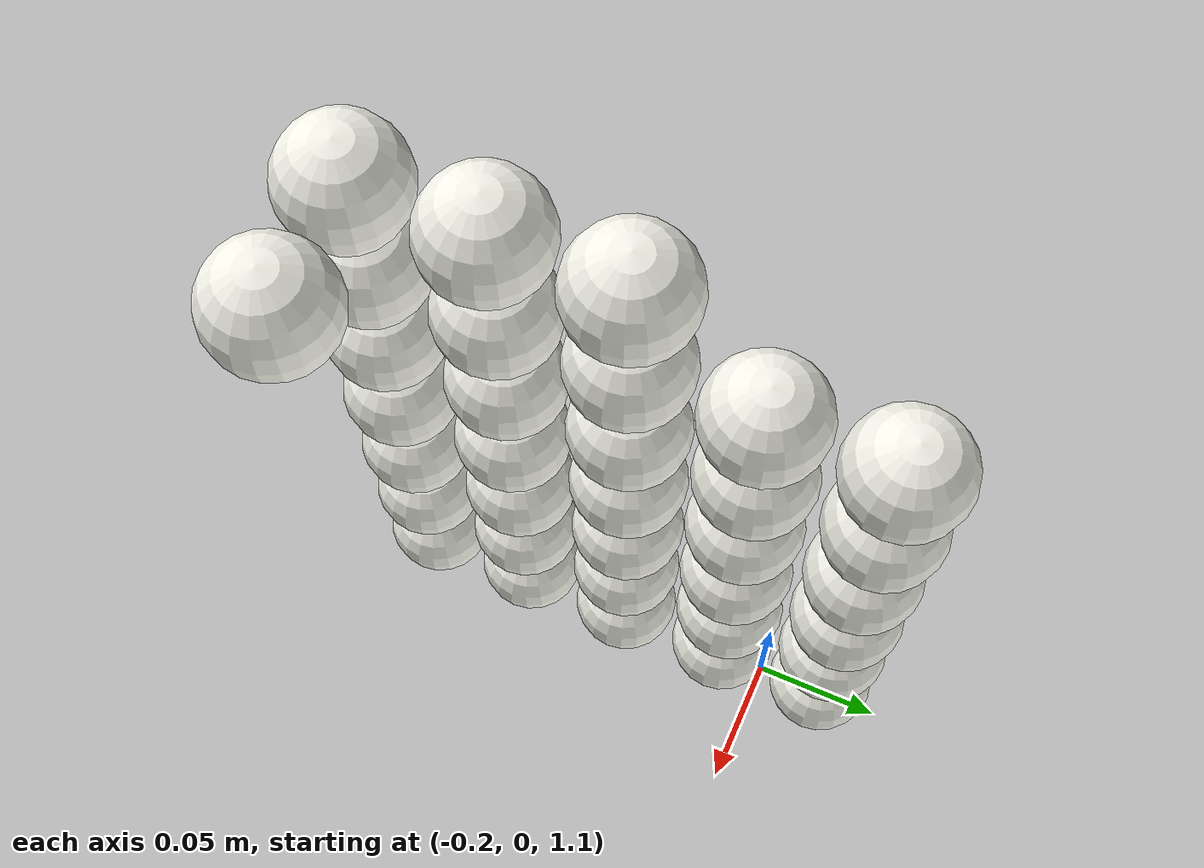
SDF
<sdf version="1.8">
 <world name="physical_100_dt5ms_diagnostic">
  <model name="ground">
   <static>true</static>
   <link name="ground_link">
    <collision name="floor">
     <geometry><plane><normal>0 0 1</normal><size>20 20</size></plane></geometry>
    </collision>
    <visual name="floor_visual">
     <geometry><plane><normal>0 0 1</normal><size>20 20</size></plane></geometry>
     <material><ambient>0.65 0.67 0.7 1</ambient><diffuse>0.65 0.67 0.7 1</diffuse></material>
    </visual>
   </link>
  </model>
  <model name="inventory_ball_002">
   <static>false</static>
   <pose>-0.19216607355711071 -0.1418581172715016 1.143306019692454 0 0 0</pose>
   <link name="ball_link">
    <inertial>
     <mass>0.0027000000000000001</mass>
     <inertia>
      <ixx>7.1999999999999999e-07</ixx>
      <iyy>7.1999999999999999e-07</iyy>
      <izz>7.1999999999999999e-07</izz>
      <ixy>0</ixy>
      <ixz>0</ixz>
      <iyz>0</iyz>
     </inertia>
    </inertial>
    <collision name="ball_collision">
     <geometry><sphere><radius>0.02</radius></sphere></geometry>
     <surface>
      <friction><ode><mu>0.3</mu><mu2>0.3</mu2></ode></friction>
      <bounce><restitution_coefficient>0.8</restitution_coefficient><threshold>0.01</threshold></bounce>
     </surface>
    </collision>
    <visual name="ball_visual">
     <geometry><sphere><radius>0.02</radius></sphere></geometry>
     <material><ambient>0.96 0.96 0.92 1</ambient><diffuse>0.96 0.96 0.92 1</diffuse></material>
    </visual>
   </link>
  </model>
  <model name="inventory_ball_005">
   <static>false</static>
   <pose>-0.19228407841818967 -0.10058069740958803 1.1432899306626678 0 0 0</pose>
   <link name="ball_link">
    <inertial>
     <mass>0.0027000000000000001</mass>
     <inertia>
      <ixx>7.1999999999999999e-07</ixx>
      <iyy>7.1999999999999999e-07</iyy>
      <izz>7.1999999999999999e-07</izz>
      <ixy>0</ixy>
      <ixz>0</ixz>
      <iyz>0</iyz>
     </inertia>
    </inertial>
    <collision name="ball_collision">
     <geometry><sphere><radius>0.02</radius></sphere></geometry>
     <surface>
      <friction><ode><mu>0.3</mu><mu2>0.3</mu2></ode></friction>
      <bounce><restitution_coefficient>0.8</restitution_coefficient><threshold>0.01</threshold></bounce>
     </surface>
    </collision>
    <visual name="ball_visual">
     <geometry><sphere><radius>0.02</radius></sphere></geometry>
     <material><ambient>0.96 0.96 0.92 1</ambient><diffuse>0.96 0.96 0.92 1</diffuse></material>
    </visual>
   </link>
  </model>
  <model name="inventory_ball_008">
   <static>false</static>
   <pose>-0.19188111636300706 -0.058895849690089208 1.1429932876998874 0 0 0</pose>
   <link name="ball_link">
    <inertial>
     <mass>0.0027000000000000001</mass>
     <inertia>
      <ixx>7.1999999999999999e-07</ixx>
      <iyy>7.1999999999999999e-07</iyy>
      <izz>7.1999999999999999e-07</izz>
      <ixy>0</ixy>
      <ixz>0</ixz>
      <iyz>0</iyz>
     </inertia>
    </inertial>
    <collision name="ball_collision">
     <geometry><sphere><radius>0.02</radius></sphere></geometry>
     <surface>
      <friction><ode><mu>0.3</mu><mu2>0.3</mu2></ode></friction>
      <bounce><restitution_coefficient>0.8</restitution_coefficient><threshold>0.01</threshold></bounce>
     </surface>
    </collision>
    <visual name="ball_visual">
     <geometry><sphere><radius>0.02</radius></sphere></geometry>
     <material><ambient>0.96 0.96 0.92 1</ambient><diffuse>0.96 0.96 0.92 1</diffuse></material>
    </visual>
   </link>
  </model>
  <model name="inventory_ball_011">
   <static>false</static>
   <pose>-0.19181572303603536 -0.017062160927983704 1.1432217368548729 0 0 0</pose>
   <link name="ball_link">
    <inertial>
     <mass>0.0027000000000000001</mass>
     <inertia>
      <ixx>7.1999999999999999e-07</ixx>
      <iyy>7.1999999999999999e-07</iyy>
      <izz>7.1999999999999999e-07</izz>
      <ixy>0</ixy>
      <ixz>0</ixz>
      <iyz>0</iyz>
     </inertia>
    </inertial>
    <collision name="ball_collision">
     <geometry><sphere><radius>0.02</radius></sphere></geometry>
     <surface>
      <friction><ode><mu>0.3</mu><mu2>0.3</mu2></ode></friction>
      <bounce><restitution_coefficient>0.8</restitution_coefficient><threshold>0.01</threshold></bounce>
     </surface>
    </collision>
    <visual name="ball_visual">
     <geometry><sphere><radius>0.02</radius></sphere></geometry>
     <material><ambient>0.96 0.96 0.92 1</ambient><diffuse>0.96 0.96 0.92 1</diffuse></material>
    </visual>
   </link>
  </model>
  <model name="inventory_ball_014">
   <static>false</static>
   <pose>-0.19195358871284596 0.024522743101728958 1.1429274946301937 0 0 0</pose>
   <link name="ball_link">
    <inertial>
     <mass>0.0027000000000000001</mass>
     <inertia>
      <ixx>7.1999999999999999e-07</ixx>
      <iyy>7.1999999999999999e-07</iyy>
      <izz>7.1999999999999999e-07</izz>
      <ixy>0</ixy>
      <ixz>0</ixz>
      <iyz>0</iyz>
     </inertia>
    </inertial>
    <collision name="ball_collision">
     <geometry><sphere><radius>0.02</radius></sphere></geometry>
     <surface>
      <friction><ode><mu>0.3</mu><mu2>0.3</mu2></ode></friction>
      <bounce><restitution_coefficient>0.8</restitution_coefficient><threshold>0.01</threshold></bounce>
     </surface>
    </collision>
    <visual name="ball_visual">
     <geometry><sphere><radius>0.02</radius></sphere></geometry>
     <material><ambient>0.96 0.96 0.92 1</ambient><diffuse>0.96 0.96 0.92 1</diffuse></material>
    </visual>
   </link>
  </model>
  <model name="inventory_ball_017">
   <static>false</static>
   <pose>-0.19191858933344136 -0.14208110069261795 1.1847221085802704 0 0 0</pose>
   <link name="ball_link">
    <inertial>
     <mass>0.0027000000000000001</mass>
     <inertia>
      <ixx>7.1999999999999999e-07</ixx>
      <iyy>7.1999999999999999e-07</iyy>
      <izz>7.1999999999999999e-07</izz>
      <ixy>0</ixy>
      <ixz>0</ixz>
      <iyz>0</iyz>
     </inertia>
    </inertial>
    <collision name="ball_collision">
     <geometry><sphere><radius>0.02</radius></sphere></geometry>
     <surface>
      <friction><ode><mu>0.3</mu><mu2>0.3</mu2></ode></friction>
      <bounce><restitution_coefficient>0.8</restitution_coefficient><threshold>0.01</threshold></bounce>
     </surface>
    </collision>
    <visual name="ball_visual">
     <geometry><sphere><radius>0.02</radius></sphere></geometry>
     <material><ambient>0.96 0.96 0.92 1</ambient><diffuse>0.96 0.96 0.92 1</diffuse></material>
    </visual>
   </link>
  </model>
  <model name="inventory_ball_020">
   <static>false</static>
   <pose>-0.19186252392122979 -0.10060195850374286 1.1847276732650549 0 0 0</pose>
   <link name="ball_link">
    <inertial>
     <mass>0.0027000000000000001</mass>
     <inertia>
      <ixx>7.1999999999999999e-07</ixx>
      <iyy>7.1999999999999999e-07</iyy>
      <izz>7.1999999999999999e-07</izz>
      <ixy>0</ixy>
      <ixz>0</ixz>
      <iyz>0</iyz>
     </inertia>
    </inertial>
    <collision name="ball_collision">
     <geometry><sphere><radius>0.02</radius></sphere></geometry>
     <surface>
      <friction><ode><mu>0.3</mu><mu2>0.3</mu2></ode></friction>
      <bounce><restitution_coefficient>0.8</restitution_coefficient><threshold>0.01</threshold></bounce>
     </surface>
    </collision>
    <visual name="ball_visual">
     <geometry><sphere><radius>0.02</radius></sphere></geometry>
     <material><ambient>0.96 0.96 0.92 1</ambient><diffuse>0.96 0.96 0.92 1</diffuse></material>
    </visual>
   </link>
  </model>
  <model name="inventory_ball_023">
   <static>false</static>
   <pose>-0.19216257115682153 -0.059080739853657582 1.1846892718288358 0 0 0</pose>
   <link name="ball_link">
    <inertial>
     <mass>0.0027000000000000001</mass>
     <inertia>
      <ixx>7.1999999999999999e-07</ixx>
      <iyy>7.1999999999999999e-07</iyy>
      <izz>7.1999999999999999e-07</izz>
      <ixy>0</ixy>
      <ixz>0</ixz>
      <iyz>0</iyz>
     </inertia>
    </inertial>
    <collision name="ball_collision">
     <geometry><sphere><radius>0.02</radius></sphere></geometry>
     <surface>
      <friction><ode><mu>0.3</mu><mu2>0.3</mu2></ode></friction>
      <bounce><restitution_coefficient>0.8</restitution_coefficient><threshold>0.01</threshold></bounce>
     </surface>
    </collision>
    <visual name="ball_visual">
     <geometry><sphere><radius>0.02</radius></sphere></geometry>
     <material><ambient>0.96 0.96 0.92 1</ambient><diffuse>0.96 0.96 0.92 1</diffuse></material>
    </visual>
   </link>
  </model>
  <model name="inventory_ball_026">
   <static>false</static>
   <pose>-0.1920626208593636 -0.016951271446155668 1.1847753111115527 0 0 0</pose>
   <link name="ball_link">
    <inertial>
     <mass>0.0027000000000000001</mass>
     <inertia>
      <ixx>7.1999999999999999e-07</ixx>
      <iyy>7.1999999999999999e-07</iyy>
      <izz>7.1999999999999999e-07</izz>
      <ixy>0</ixy>
      <ixz>0</ixz>
      <iyz>0</iyz>
     </inertia>
    </inertial>
    <collision name="ball_collision">
     <geometry><sphere><radius>0.02</radius></sphere></geometry>
     <surface>
      <friction><ode><mu>0.3</mu><mu2>0.3</mu2></ode></friction>
      <bounce><restitution_coefficient>0.8</restitution_coefficient><threshold>0.01</threshold></bounce>
     </surface>
    </collision>
    <visual name="ball_visual">
     <geometry><sphere><radius>0.02</radius></sphere></geometry>
     <material><ambient>0.96 0.96 0.92 1</ambient><diffuse>0.96 0.96 0.92 1</diffuse></material>
    </visual>
   </link>
  </model>
  <model name="inventory_ball_029">
   <static>false</static>
   <pose>-0.19206035969691576 0.024231592455494375 1.1850985225638975 0 0 0</pose>
   <link name="ball_link">
    <inertial>
     <mass>0.0027000000000000001</mass>
     <inertia>
      <ixx>7.1999999999999999e-07</ixx>
      <iyy>7.1999999999999999e-07</iyy>
      <izz>7.1999999999999999e-07</izz>
      <ixy>0</ixy>
      <ixz>0</ixz>
      <iyz>0</iyz>
     </inertia>
    </inertial>
    <collision name="ball_collision">
     <geometry><sphere><radius>0.02</radius></sphere></geometry>
     <surface>
      <friction><ode><mu>0.3</mu><mu2>0.3</mu2></ode></friction>
      <bounce><restitution_coefficient>0.8</restitution_coefficient><threshold>0.01</threshold></bounce>
     </surface>
    </collision>
    <visual name="ball_visual">
     <geometry><sphere><radius>0.02</radius></sphere></geometry>
     <material><ambient>0.96 0.96 0.92 1</ambient><diffuse>0.96 0.96 0.92 1</diffuse></material>
    </visual>
   </link>
  </model>
  <model name="inventory_ball_032">
   <static>false</static>
   <pose>-0.19204670401992019 -0.14226188337630885 1.2263289715719041 0 0 0</pose>
   <link name="ball_link">
    <inertial>
     <mass>0.0027000000000000001</mass>
     <inertia>
      <ixx>7.1999999999999999e-07</ixx>
      <iyy>7.1999999999999999e-07</iyy>
      <izz>7.1999999999999999e-07</izz>
      <ixy>0</ixy>
      <ixz>0</ixz>
      <iyz>0</iyz>
     </inertia>
    </inertial>
    <collision name="ball_collision">
     <geometry><sphere><radius>0.02</radius></sphere></geometry>
     <surface>
      <friction><ode><mu>0.3</mu><mu2>0.3</mu2></ode></friction>
      <bounce><restitution_coefficient>0.8</restitution_coefficient><threshold>0.01</threshold></bounce>
     </surface>
    </collision>
    <visual name="ball_visual">
     <geometry><sphere><radius>0.02</radius></sphere></geometry>
     <material><ambient>0.96 0.96 0.92 1</ambient><diffuse>0.96 0.96 0.92 1</diffuse></material>
    </visual>
   </link>
  </model>
  <model name="inventory_ball_035">
   <static>false</static>
   <pose>-0.19189097377858405 -0.10037781780175474 1.2262600951139717 0 0 0</pose>
   <link name="ball_link">
    <inertial>
     <mass>0.0027000000000000001</mass>
     <inertia>
      <ixx>7.1999999999999999e-07</ixx>
      <iyy>7.1999999999999999e-07</iyy>
      <izz>7.1999999999999999e-07</izz>
      <ixy>0</ixy>
      <ixz>0</ixz>
      <iyz>0</iyz>
     </inertia>
    </inertial>
    <collision name="ball_collision">
     <geometry><sphere><radius>0.02</radius></sphere></geometry>
     <surface>
      <friction><ode><mu>0.3</mu><mu2>0.3</mu2></ode></friction>
      <bounce><restitution_coefficient>0.8</restitution_coefficient><threshold>0.01</threshold></bounce>
     </surface>
    </collision>
    <visual name="ball_visual">
     <geometry><sphere><radius>0.02</radius></sphere></geometry>
     <material><ambient>0.96 0.96 0.92 1</ambient><diffuse>0.96 0.96 0.92 1</diffuse></material>
    </visual>
   </link>
  </model>
  <model name="inventory_ball_038">
   <static>false</static>
   <pose>-0.19214196656954935 -0.058799648332169829 1.2262071911283183 0 0 0</pose>
   <link name="ball_link">
    <inertial>
     <mass>0.0027000000000000001</mass>
     <inertia>
      <ixx>7.1999999999999999e-07</ixx>
      <iyy>7.1999999999999999e-07</iyy>
      <izz>7.1999999999999999e-07</izz>
      <ixy>0</ixy>
      <ixz>0</ixz>
      <iyz>0</iyz>
     </inertia>
    </inertial>
    <collision name="ball_collision">
     <geometry><sphere><radius>0.02</radius></sphere></geometry>
     <surface>
      <friction><ode><mu>0.3</mu><mu2>0.3</mu2></ode></friction>
      <bounce><restitution_coefficient>0.8</restitution_coefficient><threshold>0.01</threshold></bounce>
     </surface>
    </collision>
    <visual name="ball_visual">
     <geometry><sphere><radius>0.02</radius></sphere></geometry>
     <material><ambient>0.96 0.96 0.92 1</ambient><diffuse>0.96 0.96 0.92 1</diffuse></material>
    </visual>
   </link>
  </model>
  <model name="inventory_ball_041">
   <static>false</static>
   <pose>-0.19184249351995492 -0.017176372581928216 1.2265671758871786 0 0 0</pose>
   <link name="ball_link">
    <inertial>
     <mass>0.0027000000000000001</mass>
     <inertia>
      <ixx>7.1999999999999999e-07</ixx>
      <iyy>7.1999999999999999e-07</iyy>
      <izz>7.1999999999999999e-07</izz>
      <ixy>0</ixy>
      <ixz>0</ixz>
      <iyz>0</iyz>
     </inertia>
    </inertial>
    <collision name="ball_collision">
     <geometry><sphere><radius>0.02</radius></sphere></geometry>
     <surface>
      <friction><ode><mu>0.3</mu><mu2>0.3</mu2></ode></friction>
      <bounce><restitution_coefficient>0.8</restitution_coefficient><threshold>0.01</threshold></bounce>
     </surface>
    </collision>
    <visual name="ball_visual">
     <geometry><sphere><radius>0.02</radius></sphere></geometry>
     <material><ambient>0.96 0.96 0.92 1</ambient><diffuse>0.96 0.96 0.92 1</diffuse></material>
    </visual>
   </link>
  </model>
  <model name="inventory_ball_044">
   <static>false</static>
   <pose>-0.19180100068238329 0.024284508475241603 1.2261347550998967 0 0 0</pose>
   <link name="ball_link">
    <inertial>
     <mass>0.0027000000000000001</mass>
     <inertia>
      <ixx>7.1999999999999999e-07</ixx>
      <iyy>7.1999999999999999e-07</iyy>
      <izz>7.1999999999999999e-07</izz>
      <ixy>0</ixy>
      <ixz>0</ixz>
      <iyz>0</iyz>
     </inertia>
    </inertial>
    <collision name="ball_collision">
     <geometry><sphere><radius>0.02</radius></sphere></geometry>
     <surface>
      <friction><ode><mu>0.3</mu><mu2>0.3</mu2></ode></friction>
      <bounce><restitution_coefficient>0.8</restitution_coefficient><threshold>0.01</threshold></bounce>
     </surface>
    </collision>
    <visual name="ball_visual">
     <geometry><sphere><radius>0.02</radius></sphere></geometry>
     <material><ambient>0.96 0.96 0.92 1</ambient><diffuse>0.96 0.96 0.92 1</diffuse></material>
    </visual>
   </link>
  </model>
  <model name="inventory_ball_047">
   <static>false</static>
   <pose>-0.19184049934241582 -0.14222296512130017 1.2679851694268596 0 0 0</pose>
   <link name="ball_link">
    <inertial>
     <mass>0.0027000000000000001</mass>
     <inertia>
      <ixx>7.1999999999999999e-07</ixx>
      <iyy>7.1999999999999999e-07</iyy>
      <izz>7.1999999999999999e-07</izz>
      <ixy>0</ixy>
      <ixz>0</ixz>
      <iyz>0</iyz>
     </inertia>
    </inertial>
    <collision name="ball_collision">
     <geometry><sphere><radius>0.02</radius></sphere></geometry>
     <surface>
      <friction><ode><mu>0.3</mu><mu2>0.3</mu2></ode></friction>
      <bounce><restitution_coefficient>0.8</restitution_coefficient><threshold>0.01</threshold></bounce>
     </surface>
    </collision>
    <visual name="ball_visual">
     <geometry><sphere><radius>0.02</radius></sphere></geometry>
     <material><ambient>0.96 0.96 0.92 1</ambient><diffuse>0.96 0.96 0.92 1</diffuse></material>
    </visual>
   </link>
  </model>
  <model name="inventory_ball_050">
   <static>false</static>
   <pose>-0.19186204135854601 -0.1005793093619662 1.2678870297747808 0 0 0</pose>
   <link name="ball_link">
    <inertial>
     <mass>0.0027000000000000001</mass>
     <inertia>
      <ixx>7.1999999999999999e-07</ixx>
      <iyy>7.1999999999999999e-07</iyy>
      <izz>7.1999999999999999e-07</izz>
      <ixy>0</ixy>
      <ixz>0</ixz>
      <iyz>0</iyz>
     </inertia>
    </inertial>
    <collision name="ball_collision">
     <geometry><sphere><radius>0.02</radius></sphere></geometry>
     <surface>
      <friction><ode><mu>0.3</mu><mu2>0.3</mu2></ode></friction>
      <bounce><restitution_coefficient>0.8</restitution_coefficient><threshold>0.01</threshold></bounce>
     </surface>
    </collision>
    <visual name="ball_visual">
     <geometry><sphere><radius>0.02</radius></sphere></geometry>
     <material><ambient>0.96 0.96 0.92 1</ambient><diffuse>0.96 0.96 0.92 1</diffuse></material>
    </visual>
   </link>
  </model>
  <model name="inventory_ball_053">
   <static>false</static>
   <pose>-0.19209714866271152 -0.058747014768925666 1.2678380688395581 0 0 0</pose>
   <link name="ball_link">
    <inertial>
     <mass>0.0027000000000000001</mass>
     <inertia>
      <ixx>7.1999999999999999e-07</ixx>
      <iyy>7.1999999999999999e-07</iyy>
      <izz>7.1999999999999999e-07</izz>
      <ixy>0</ixy>
      <ixz>0</ixz>
      <iyz>0</iyz>
     </inertia>
    </inertial>
    <collision name="ball_collision">
     <geometry><sphere><radius>0.02</radius></sphere></geometry>
     <surface>
      <friction><ode><mu>0.3</mu><mu2>0.3</mu2></ode></friction>
      <bounce><restitution_coefficient>0.8</restitution_coefficient><threshold>0.01</threshold></bounce>
     </surface>
    </collision>
    <visual name="ball_visual">
     <geometry><sphere><radius>0.02</radius></sphere></geometry>
     <material><ambient>0.96 0.96 0.92 1</ambient><diffuse>0.96 0.96 0.92 1</diffuse></material>
    </visual>
   </link>
  </model>
  <model name="inventory_ball_056">
   <static>false</static>
   <pose>-0.19225748559006681 -0.017357197219378596 1.2681013866669779 0 0 0</pose>
   <link name="ball_link">
    <inertial>
     <mass>0.0027000000000000001</mass>
     <inertia>
      <ixx>7.1999999999999999e-07</ixx>
      <iyy>7.1999999999999999e-07</iyy>
      <izz>7.1999999999999999e-07</izz>
      <ixy>0</ixy>
      <ixz>0</ixz>
      <iyz>0</iyz>
     </inertia>
    </inertial>
    <collision name="ball_collision">
     <geometry><sphere><radius>0.02</radius></sphere></geometry>
     <surface>
      <friction><ode><mu>0.3</mu><mu2>0.3</mu2></ode></friction>
      <bounce><restitution_coefficient>0.8</restitution_coefficient><threshold>0.01</threshold></bounce>
     </surface>
    </collision>
    <visual name="ball_visual">
     <geometry><sphere><radius>0.02</radius></sphere></geometry>
     <material><ambient>0.96 0.96 0.92 1</ambient><diffuse>0.96 0.96 0.92 1</diffuse></material>
    </visual>
   </link>
  </model>
  <model name="inventory_ball_059">
   <static>false</static>
   <pose>-0.19181550180134002 0.024214245948617132 1.2677581584885376 0 0 0</pose>
   <link name="ball_link">
    <inertial>
     <mass>0.0027000000000000001</mass>
     <inertia>
      <ixx>7.1999999999999999e-07</ixx>
      <iyy>7.1999999999999999e-07</iyy>
      <izz>7.1999999999999999e-07</izz>
      <ixy>0</ixy>
      <ixz>0</ixz>
      <iyz>0</iyz>
     </inertia>
    </inertial>
    <collision name="ball_collision">
     <geometry><sphere><radius>0.02</radius></sphere></geometry>
     <surface>
      <friction><ode><mu>0.3</mu><mu2>0.3</mu2></ode></friction>
      <bounce><restitution_coefficient>0.8</restitution_coefficient><threshold>0.01</threshold></bounce>
     </surface>
    </collision>
    <visual name="ball_visual">
     <geometry><sphere><radius>0.02</radius></sphere></geometry>
     <material><ambient>0.96 0.96 0.92 1</ambient><diffuse>0.96 0.96 0.92 1</diffuse></material>
    </visual>
   </link>
  </model>
  <model name="inventory_ball_062">
   <static>false</static>
   <pose>-0.19224094927730884 -0.14205842723073867 1.3095035815632372 0 0 0</pose>
   <link name="ball_link">
    <inertial>
     <mass>0.0027000000000000001</mass>
     <inertia>
      <ixx>7.1999999999999999e-07</ixx>
      <iyy>7.1999999999999999e-07</iyy>
      <izz>7.1999999999999999e-07</izz>
      <ixy>0</ixy>
      <ixz>0</ixz>
      <iyz>0</iyz>
     </inertia>
    </inertial>
    <collision name="ball_collision">
     <geometry><sphere><radius>0.02</radius></sphere></geometry>
     <surface>
      <friction><ode><mu>0.3</mu><mu2>0.3</mu2></ode></friction>
      <bounce><restitution_coefficient>0.8</restitution_coefficient><threshold>0.01</threshold></bounce>
     </surface>
    </collision>
    <visual name="ball_visual">
     <geometry><sphere><radius>0.02</radius></sphere></geometry>
     <material><ambient>0.96 0.96 0.92 1</ambient><diffuse>0.96 0.96 0.92 1</diffuse></material>
    </visual>
   </link>
  </model>
  <model name="inventory_ball_065">
   <static>false</static>
   <pose>-0.19215011613127075 -0.10014604064043441 1.3095658784470323 0 0 0</pose>
   <link name="ball_link">
    <inertial>
     <mass>0.0027000000000000001</mass>
     <inertia>
      <ixx>7.1999999999999999e-07</ixx>
      <iyy>7.1999999999999999e-07</iyy>
      <izz>7.1999999999999999e-07</izz>
      <ixy>0</ixy>
      <ixz>0</ixz>
      <iyz>0</iyz>
     </inertia>
    </inertial>
    <collision name="ball_collision">
     <geometry><sphere><radius>0.02</radius></sphere></geometry>
     <surface>
      <friction><ode><mu>0.3</mu><mu2>0.3</mu2></ode></friction>
      <bounce><restitution_coefficient>0.8</restitution_coefficient><threshold>0.01</threshold></bounce>
     </surface>
    </collision>
    <visual name="ball_visual">
     <geometry><sphere><radius>0.02</radius></sphere></geometry>
     <material><ambient>0.96 0.96 0.92 1</ambient><diffuse>0.96 0.96 0.92 1</diffuse></material>
    </visual>
   </link>
  </model>
  <model name="inventory_ball_068">
   <static>false</static>
   <pose>-0.19174417981019512 -0.05859078255935142 1.3093997866663627 0 0 0</pose>
   <link name="ball_link">
    <inertial>
     <mass>0.0027000000000000001</mass>
     <inertia>
      <ixx>7.1999999999999999e-07</ixx>
      <iyy>7.1999999999999999e-07</iyy>
      <izz>7.1999999999999999e-07</izz>
      <ixy>0</ixy>
      <ixz>0</ixz>
      <iyz>0</iyz>
     </inertia>
    </inertial>
    <collision name="ball_collision">
     <geometry><sphere><radius>0.02</radius></sphere></geometry>
     <surface>
      <friction><ode><mu>0.3</mu><mu2>0.3</mu2></ode></friction>
      <bounce><restitution_coefficient>0.8</restitution_coefficient><threshold>0.01</threshold></bounce>
     </surface>
    </collision>
    <visual name="ball_visual">
     <geometry><sphere><radius>0.02</radius></sphere></geometry>
     <material><ambient>0.96 0.96 0.92 1</ambient><diffuse>0.96 0.96 0.92 1</diffuse></material>
    </visual>
   </link>
  </model>
  <model name="inventory_ball_071">
   <static>false</static>
   <pose>-0.1921408781650967 -0.01702955763883085 1.3095730050204037 0 0 0</pose>
   <link name="ball_link">
    <inertial>
     <mass>0.0027000000000000001</mass>
     <inertia>
      <ixx>7.1999999999999999e-07</ixx>
      <iyy>7.1999999999999999e-07</iyy>
      <izz>7.1999999999999999e-07</izz>
      <ixy>0</ixy>
      <ixz>0</ixz>
      <iyz>0</iyz>
     </inertia>
    </inertial>
    <collision name="ball_collision">
     <geometry><sphere><radius>0.02</radius></sphere></geometry>
     <surface>
      <friction><ode><mu>0.3</mu><mu2>0.3</mu2></ode></friction>
      <bounce><restitution_coefficient>0.8</restitution_coefficient><threshold>0.01</threshold></bounce>
     </surface>
    </collision>
    <visual name="ball_visual">
     <geometry><sphere><radius>0.02</radius></sphere></geometry>
     <material><ambient>0.96 0.96 0.92 1</ambient><diffuse>0.96 0.96 0.92 1</diffuse></material>
    </visual>
   </link>
  </model>
  <model name="inventory_ball_074">
   <static>false</static>
   <pose>-0.19212197530470326 0.024681225618981499 1.30964750817449 0 0 0</pose>
   <link name="ball_link">
    <inertial>
     <mass>0.0027000000000000001</mass>
     <inertia>
      <ixx>7.1999999999999999e-07</ixx>
      <iyy>7.1999999999999999e-07</iyy>
      <izz>7.1999999999999999e-07</izz>
      <ixy>0</ixy>
      <ixz>0</ixz>
      <iyz>0</iyz>
     </inertia>
    </inertial>
    <collision name="ball_collision">
     <geometry><sphere><radius>0.02</radius></sphere></geometry>
     <surface>
      <friction><ode><mu>0.3</mu><mu2>0.3</mu2></ode></friction>
      <bounce><restitution_coefficient>0.8</restitution_coefficient><threshold>0.01</threshold></bounce>
     </surface>
    </collision>
    <visual name="ball_visual">
     <geometry><sphere><radius>0.02</radius></sphere></geometry>
     <material><ambient>0.96 0.96 0.92 1</ambient><diffuse>0.96 0.96 0.92 1</diffuse></material>
    </visual>
   </link>
  </model>
  <model name="inventory_ball_077">
   <static>false</static>
   <pose>-0.19220554036323631 -0.14172353265803533 1.3509480668791445 0 0 0</pose>
   <link name="ball_link">
    <inertial>
     <mass>0.0027000000000000001</mass>
     <inertia>
      <ixx>7.1999999999999999e-07</ixx>
      <iyy>7.1999999999999999e-07</iyy>
      <izz>7.1999999999999999e-07</izz>
      <ixy>0</ixy>
      <ixz>0</ixz>
      <iyz>0</iyz>
     </inertia>
    </inertial>
    <collision name="ball_collision">
     <geometry><sphere><radius>0.02</radius></sphere></geometry>
     <surface>
      <friction><ode><mu>0.3</mu><mu2>0.3</mu2></ode></friction>
      <bounce><restitution_coefficient>0.8</restitution_coefficient><threshold>0.01</threshold></bounce>
     </surface>
    </collision>
    <visual name="ball_visual">
     <geometry><sphere><radius>0.02</radius></sphere></geometry>
     <material><ambient>0.96 0.96 0.92 1</ambient><diffuse>0.96 0.96 0.92 1</diffuse></material>
    </visual>
   </link>
  </model>
  <model name="inventory_ball_080">
   <static>false</static>
   <pose>-0.19215227079132682 -0.10034328850787995 1.3512716289061995 0 0 0</pose>
   <link name="ball_link">
    <inertial>
     <mass>0.0027000000000000001</mass>
     <inertia>
      <ixx>7.1999999999999999e-07</ixx>
      <iyy>7.1999999999999999e-07</iyy>
      <izz>7.1999999999999999e-07</izz>
      <ixy>0</ixy>
      <ixz>0</ixz>
      <iyz>0</iyz>
     </inertia>
    </inertial>
    <collision name="ball_collision">
     <geometry><sphere><radius>0.02</radius></sphere></geometry>
     <surface>
      <friction><ode><mu>0.3</mu><mu2>0.3</mu2></ode></friction>
      <bounce><restitution_coefficient>0.8</restitution_coefficient><threshold>0.01</threshold></bounce>
     </surface>
    </collision>
    <visual name="ball_visual">
     <geometry><sphere><radius>0.02</radius></sphere></geometry>
     <material><ambient>0.96 0.96 0.92 1</ambient><diffuse>0.96 0.96 0.92 1</diffuse></material>
    </visual>
   </link>
  </model>
  <model name="inventory_ball_083">
   <static>false</static>
   <pose>-0.19215678842843051 -0.058862528491925255 1.3513030141337761 0 0 0</pose>
   <link name="ball_link">
    <inertial>
     <mass>0.0027000000000000001</mass>
     <inertia>
      <ixx>7.1999999999999999e-07</ixx>
      <iyy>7.1999999999999999e-07</iyy>
      <izz>7.1999999999999999e-07</izz>
      <ixy>0</ixy>
      <ixz>0</ixz>
      <iyz>0</iyz>
     </inertia>
    </inertial>
    <collision name="ball_collision">
     <geometry><sphere><radius>0.02</radius></sphere></geometry>
     <surface>
      <friction><ode><mu>0.3</mu><mu2>0.3</mu2></ode></friction>
      <bounce><restitution_coefficient>0.8</restitution_coefficient><threshold>0.01</threshold></bounce>
     </surface>
    </collision>
    <visual name="ball_visual">
     <geometry><sphere><radius>0.02</radius></sphere></geometry>
     <material><ambient>0.96 0.96 0.92 1</ambient><diffuse>0.96 0.96 0.92 1</diffuse></material>
    </visual>
   </link>
  </model>
  <model name="inventory_ball_086">
   <static>false</static>
   <pose>-0.19170234213128695 -0.017456043567340214 1.3510278925873604 0 0 0</pose>
   <link name="ball_link">
    <inertial>
     <mass>0.0027000000000000001</mass>
     <inertia>
      <ixx>7.1999999999999999e-07</ixx>
      <iyy>7.1999999999999999e-07</iyy>
      <izz>7.1999999999999999e-07</izz>
      <ixy>0</ixy>
      <ixz>0</ixz>
      <iyz>0</iyz>
     </inertia>
    </inertial>
    <collision name="ball_collision">
     <geometry><sphere><radius>0.02</radius></sphere></geometry>
     <surface>
      <friction><ode><mu>0.3</mu><mu2>0.3</mu2></ode></friction>
      <bounce><restitution_coefficient>0.8</restitution_coefficient><threshold>0.01</threshold></bounce>
     </surface>
    </collision>
    <visual name="ball_visual">
     <geometry><sphere><radius>0.02</radius></sphere></geometry>
     <material><ambient>0.96 0.96 0.92 1</ambient><diffuse>0.96 0.96 0.92 1</diffuse></material>
    </visual>
   </link>
  </model>
  <model name="inventory_ball_089">
   <static>false</static>
   <pose>-0.19179975302721611 0.024522123955052426 1.3512670066594357 0 0 0</pose>
   <link name="ball_link">
    <inertial>
     <mass>0.0027000000000000001</mass>
     <inertia>
      <ixx>7.1999999999999999e-07</ixx>
      <iyy>7.1999999999999999e-07</iyy>
      <izz>7.1999999999999999e-07</izz>
      <ixy>0</ixy>
      <ixz>0</ixz>
      <iyz>0</iyz>
     </inertia>
    </inertial>
    <collision name="ball_collision">
     <geometry><sphere><radius>0.02</radius></sphere></geometry>
     <surface>
      <friction><ode><mu>0.3</mu><mu2>0.3</mu2></ode></friction>
      <bounce><restitution_coefficient>0.8</restitution_coefficient><threshold>0.01</threshold></bounce>
     </surface>
    </collision>
    <visual name="ball_visual">
     <geometry><sphere><radius>0.02</radius></sphere></geometry>
     <material><ambient>0.96 0.96 0.92 1</ambient><diffuse>0.96 0.96 0.92 1</diffuse></material>
    </visual>
   </link>
  </model>
  <model name="inventory_ball_092">
   <static>false</static>
   <pose>-0.19173664199764373 -0.142219425331364 1.3925692572022517 0 0 0</pose>
   <link name="ball_link">
    <inertial>
     <mass>0.0027000000000000001</mass>
     <inertia>
      <ixx>7.1999999999999999e-07</ixx>
      <iyy>7.1999999999999999e-07</iyy>
      <izz>7.1999999999999999e-07</izz>
      <ixy>0</ixy>
      <ixz>0</ixz>
      <iyz>0</iyz>
     </inertia>
    </inertial>
    <collision name="ball_collision">
     <geometry><sphere><radius>0.02</radius></sphere></geometry>
     <surface>
      <friction><ode><mu>0.3</mu><mu2>0.3</mu2></ode></friction>
      <bounce><restitution_coefficient>0.8</restitution_coefficient><threshold>0.01</threshold></bounce>
     </surface>
    </collision>
    <visual name="ball_visual">
     <geometry><sphere><radius>0.02</radius></sphere></geometry>
     <material><ambient>0.96 0.96 0.92 1</ambient><diffuse>0.96 0.96 0.92 1</diffuse></material>
    </visual>
   </link>
  </model>
  <model name="inventory_ball_093">
   <static>false</static>
   <pose>-0.15063577841337433 -0.14196806581546911 1.392663408927389 0 0 0</pose>
   <link name="ball_link">
    <inertial>
     <mass>0.0027000000000000001</mass>
     <inertia>
      <ixx>7.1999999999999999e-07</ixx>
      <iyy>7.1999999999999999e-07</iyy>
      <izz>7.1999999999999999e-07</izz>
      <ixy>0</ixy>
      <ixz>0</ixz>
      <iyz>0</iyz>
     </inertia>
    </inertial>
    <collision name="ball_collision">
     <geometry><sphere><radius>0.02</radius></sphere></geometry>
     <surface>
      <friction><ode><mu>0.3</mu><mu2>0.3</mu2></ode></friction>
      <bounce><restitution_coefficient>0.8</restitution_coefficient><threshold>0.01</threshold></bounce>
     </surface>
    </collision>
    <visual name="ball_visual">
     <geometry><sphere><radius>0.02</radius></sphere></geometry>
     <material><ambient>0.96 0.96 0.92 1</ambient><diffuse>0.96 0.96 0.92 1</diffuse></material>
    </visual>
   </link>
  </model>
  <model name="inventory_ball_095">
   <static>false</static>
   <pose>-0.19191945722466897 -0.10054160965902177 1.3927931191112899 0 0 0</pose>
   <link name="ball_link">
    <inertial>
     <mass>0.0027000000000000001</mass>
     <inertia>
      <ixx>7.1999999999999999e-07</ixx>
      <iyy>7.1999999999999999e-07</iyy>
      <izz>7.1999999999999999e-07</izz>
      <ixy>0</ixy>
      <ixz>0</ixz>
      <iyz>0</iyz>
     </inertia>
    </inertial>
    <collision name="ball_collision">
     <geometry><sphere><radius>0.02</radius></sphere></geometry>
     <surface>
      <friction><ode><mu>0.3</mu><mu2>0.3</mu2></ode></friction>
      <bounce><restitution_coefficient>0.8</restitution_coefficient><threshold>0.01</threshold></bounce>
     </surface>
    </collision>
    <visual name="ball_visual">
     <geometry><sphere><radius>0.02</radius></sphere></geometry>
     <material><ambient>0.96 0.96 0.92 1</ambient><diffuse>0.96 0.96 0.92 1</diffuse></material>
    </visual>
   </link>
  </model>
  <model name="inventory_ball_098">
   <static>false</static>
   <pose>-0.19183732846618823 -0.058717731973619181 1.3926571731574608 0 0 0</pose>
   <link name="ball_link">
    <inertial>
     <mass>0.0027000000000000001</mass>
     <inertia>
      <ixx>7.1999999999999999e-07</ixx>
      <iyy>7.1999999999999999e-07</iyy>
      <izz>7.1999999999999999e-07</izz>
      <ixy>0</ixy>
      <ixz>0</ixz>
      <iyz>0</iyz>
     </inertia>
    </inertial>
    <collision name="ball_collision">
     <geometry><sphere><radius>0.02</radius></sphere></geometry>
     <surface>
      <friction><ode><mu>0.3</mu><mu2>0.3</mu2></ode></friction>
      <bounce><restitution_coefficient>0.8</restitution_coefficient><threshold>0.01</threshold></bounce>
     </surface>
    </collision>
    <visual name="ball_visual">
     <geometry><sphere><radius>0.02</radius></sphere></geometry>
     <material><ambient>0.96 0.96 0.92 1</ambient><diffuse>0.96 0.96 0.92 1</diffuse></material>
    </visual>
   </link>
  </model>
 </world>
</sdf>
